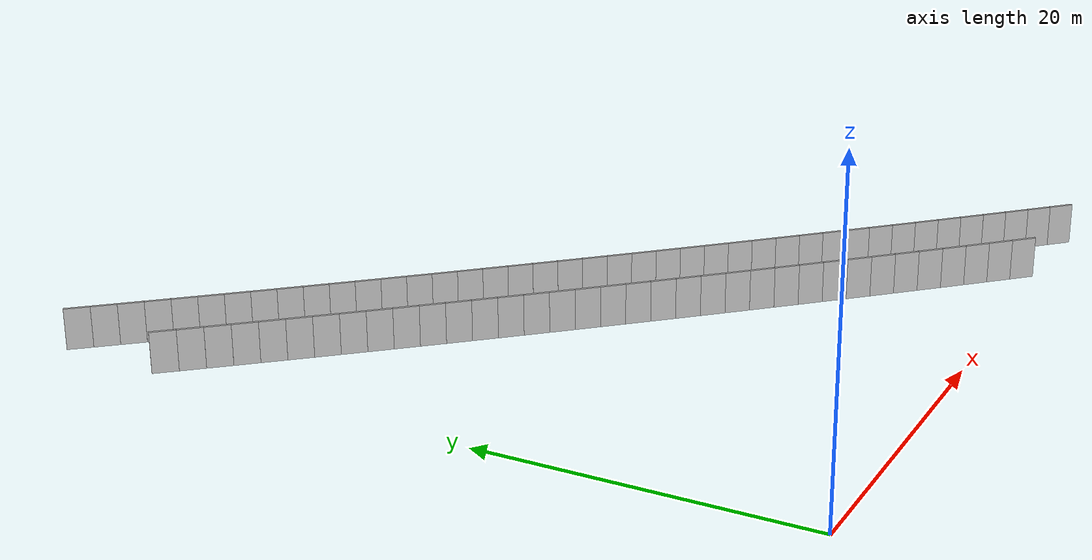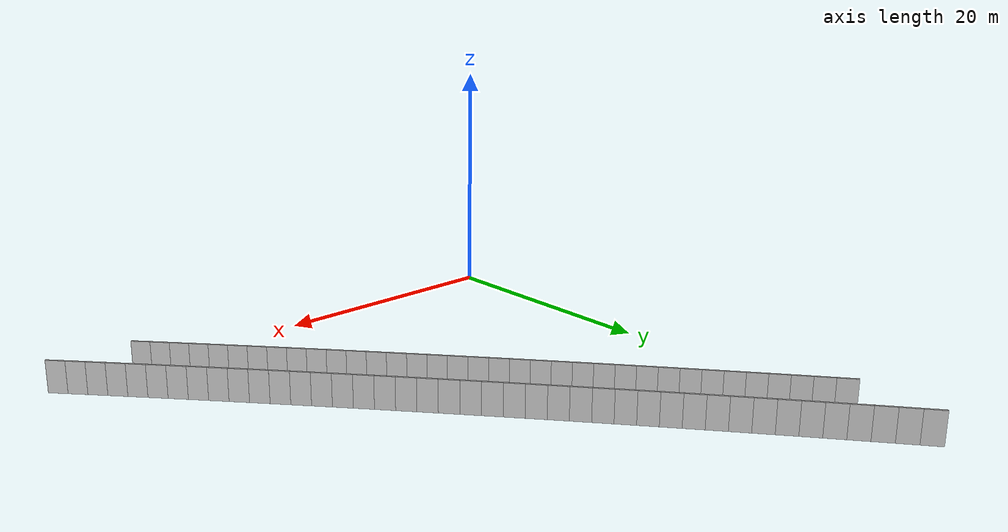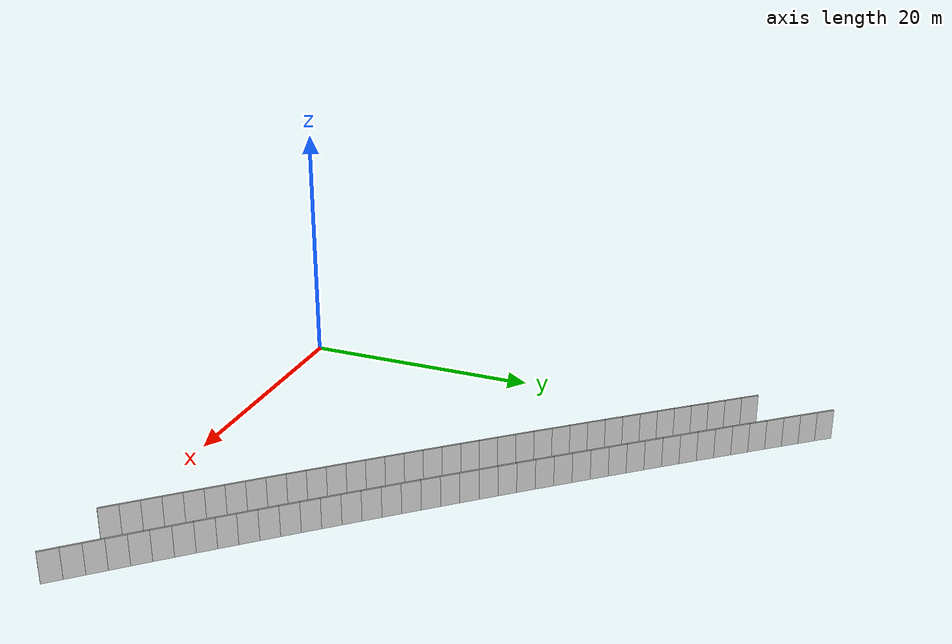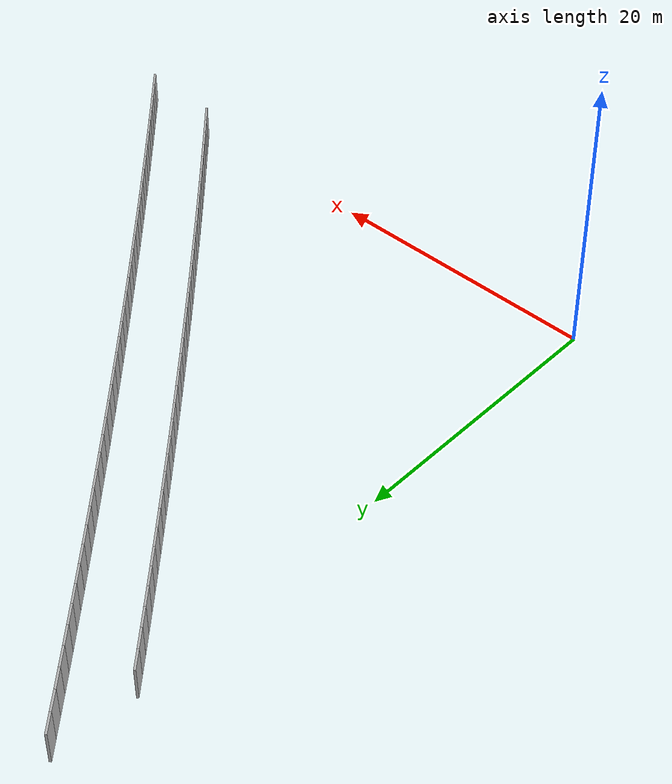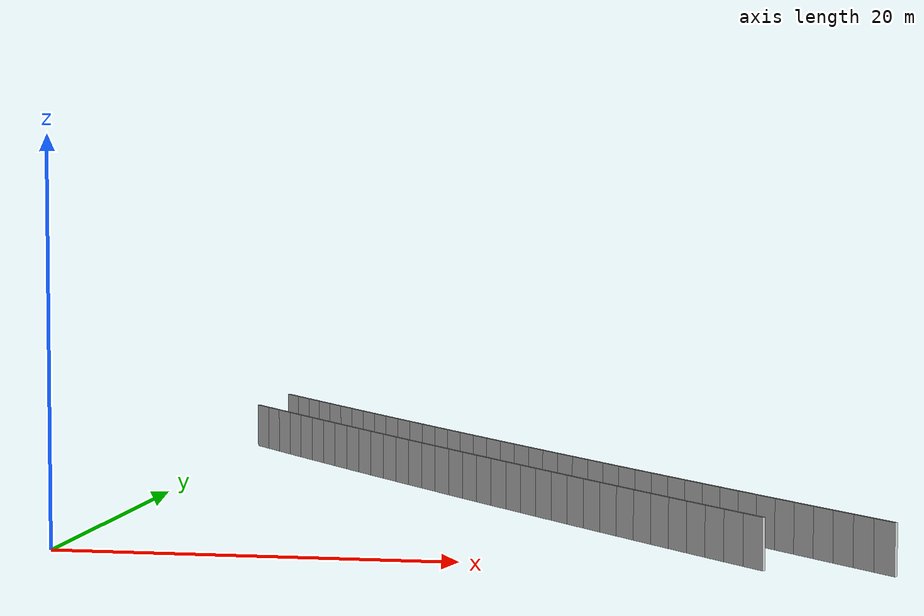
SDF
<?xml version="1.0" ?>
<sdf version="1.6">
  <model name="sps_0810">
    <pose frame="">0 0 0 0 -0 0</pose>
    <static>1</static>
    <self_collide>0</self_collide>
    <allow_auto_disable>0</allow_auto_disable>
    <link name="Wall8451">
      <kinematic>0</kinematic>
      <gravity>1</gravity>
      <self_collide>0</self_collide>
      <collision name="collision">
        <geometry>
          <box>
            <size>1.49902 0.15 2.5</size>
          </box>
        </geometry>
        <pose frame="">0 0 0 0 -0 0</pose>
      </collision>
      <visual name="visual">
        <geometry>
          <box>
            <size>1.49902 0.15 2.5</size>
          </box>
        </geometry>
        <pose frame="">0 0 0 0 -0 0</pose>
        <cast_shadows>1</cast_shadows>
        <transparency>0.0</transparency>
      </visual>
      <pose frame="">0.347434 39.3795 1.25 0 0 -0.882345</pose>
    </link>
    <link name="Wall8452">
      <kinematic>0</kinematic>
      <gravity>1</gravity>
      <self_collide>0</self_collide>
      <collision name="collision">
        <geometry>
          <box>
            <size>1.49896 0.15 2.5</size>
          </box>
        </geometry>
        <pose frame="">0 0 0 0 -0 0</pose>
      </collision>
      <visual name="visual">
        <geometry>
          <box>
            <size>1.49896 0.15 2.5</size>
          </box>
        </geometry>
        <pose frame="">0 0 0 0 -0 0</pose>
        <cast_shadows>1</cast_shadows>
        <transparency>0.0</transparency>
      </visual>
      <pose frame="">1.30074 38.2227 1.25 0 0 -0.880729</pose>
    </link>
    <link name="Wall8453">
      <kinematic>0</kinematic>
      <gravity>1</gravity>
      <self_collide>0</self_collide>
      <collision name="collision">
        <geometry>
          <box>
            <size>1.49882 0.15 2.5</size>
          </box>
        </geometry>
        <pose frame="">0 0 0 0 -0 0</pose>
      </collision>
      <visual name="visual">
        <geometry>
          <box>
            <size>1.49882 0.15 2.5</size>
          </box>
        </geometry>
        <pose frame="">0 0 0 0 -0 0</pose>
        <cast_shadows>1</cast_shadows>
        <transparency>0.0</transparency>
      </visual>
      <pose frame="">2.25585 37.0675 1.25 0 0 -0.879119</pose>
    </link>
    <link name="Wall8454">
      <kinematic>0</kinematic>
      <gravity>1</gravity>
      <self_collide>0</self_collide>
      <collision name="collision">
        <geometry>
          <box>
            <size>1.49896 0.15 2.5</size>
          </box>
        </geometry>
        <pose frame="">0 0 0 0 -0 0</pose>
      </collision>
      <visual name="visual">
        <geometry>
          <box>
            <size>1.49896 0.15 2.5</size>
          </box>
        </geometry>
        <pose frame="">0 0 0 0 -0 0</pose>
        <cast_shadows>1</cast_shadows>
        <transparency>0.0</transparency>
      </visual>
      <pose frame="">3.21276 35.9138 1.25 0 0 -0.877606</pose>
    </link>
    <link name="Wall8455">
      <kinematic>0</kinematic>
      <gravity>1</gravity>
      <self_collide>0</self_collide>
      <collision name="collision">
        <geometry>
          <box>
            <size>1.49887 0.15 2.5</size>
          </box>
        </geometry>
        <pose frame="">0 0 0 0 -0 0</pose>
      </collision>
      <visual name="visual">
        <geometry>
          <box>
            <size>1.49887 0.15 2.5</size>
          </box>
        </geometry>
        <pose frame="">0 0 0 0 -0 0</pose>
        <cast_shadows>1</cast_shadows>
        <transparency>0.0</transparency>
      </visual>
      <pose frame="">4.17147 34.7616 1.25 0 0 -0.876022</pose>
    </link>
    <link name="Wall8456">
      <kinematic>0</kinematic>
      <gravity>1</gravity>
      <self_collide>0</self_collide>
      <collision name="collision">
        <geometry>
          <box>
            <size>1.49888 0.15 2.5</size>
          </box>
        </geometry>
        <pose frame="">0 0 0 0 -0 0</pose>
      </collision>
      <visual name="visual">
        <geometry>
          <box>
            <size>1.49888 0.15 2.5</size>
          </box>
        </geometry>
        <pose frame="">0 0 0 0 -0 0</pose>
        <cast_shadows>1</cast_shadows>
        <transparency>0.0</transparency>
      </visual>
      <pose frame="">5.13195 33.6109 1.25 0 0 -0.874489</pose>
    </link>
    <link name="Wall8457">
      <kinematic>0</kinematic>
      <gravity>1</gravity>
      <self_collide>0</self_collide>
      <collision name="collision">
        <geometry>
          <box>
            <size>1.49904 0.15 2.5</size>
          </box>
        </geometry>
        <pose frame="">0 0 0 0 -0 0</pose>
      </collision>
      <visual name="visual">
        <geometry>
          <box>
            <size>1.49904 0.15 2.5</size>
          </box>
        </geometry>
        <pose frame="">0 0 0 0 -0 0</pose>
        <cast_shadows>1</cast_shadows>
        <transparency>0.0</transparency>
      </visual>
      <pose frame="">6.09435 32.4617 1.25 0 0 -0.872774</pose>
    </link>
    <link name="Wall8458">
      <kinematic>0</kinematic>
      <gravity>1</gravity>
      <self_collide>0</self_collide>
      <collision name="collision">
        <geometry>
          <box>
            <size>1.4989 0.15 2.5</size>
          </box>
        </geometry>
        <pose frame="">0 0 0 0 -0 0</pose>
      </collision>
      <visual name="visual">
        <geometry>
          <box>
            <size>1.4989 0.15 2.5</size>
          </box>
        </geometry>
        <pose frame="">0 0 0 0 -0 0</pose>
        <cast_shadows>1</cast_shadows>
        <transparency>0.0</transparency>
      </visual>
      <pose frame="">7.05855 31.314 1.25 0 0 -0.871366</pose>
    </link>
    <link name="Wall8459">
      <kinematic>0</kinematic>
      <gravity>1</gravity>
      <self_collide>0</self_collide>
      <collision name="collision">
        <geometry>
          <box>
            <size>1.49903 0.15 2.5</size>
          </box>
        </geometry>
        <pose frame="">0 0 0 0 -0 0</pose>
      </collision>
      <visual name="visual">
        <geometry>
          <box>
            <size>1.49903 0.15 2.5</size>
          </box>
        </geometry>
        <pose frame="">0 0 0 0 -0 0</pose>
        <cast_shadows>1</cast_shadows>
        <transparency>0.0</transparency>
      </visual>
      <pose frame="">8.02456 30.1678 1.25 0 0 -0.869625</pose>
    </link>
    <link name="Wall8460">
      <kinematic>0</kinematic>
      <gravity>1</gravity>
      <self_collide>0</self_collide>
      <collision name="collision">
        <geometry>
          <box>
            <size>1.49892 0.15 2.5</size>
          </box>
        </geometry>
        <pose frame="">0 0 0 0 -0 0</pose>
      </collision>
      <visual name="visual">
        <geometry>
          <box>
            <size>1.49892 0.15 2.5</size>
          </box>
        </geometry>
        <pose frame="">0 0 0 0 -0 0</pose>
        <cast_shadows>1</cast_shadows>
        <transparency>0.0</transparency>
      </visual>
      <pose frame="">8.99245 29.0232 1.25 0 0 -0.868071</pose>
    </link>
    <link name="Wall8461">
      <kinematic>0</kinematic>
      <gravity>1</gravity>
      <self_collide>0</self_collide>
      <collision name="collision">
        <geometry>
          <box>
            <size>1.49907 0.15 2.5</size>
          </box>
        </geometry>
        <pose frame="">0 0 0 0 -0 0</pose>
      </collision>
      <visual name="visual">
        <geometry>
          <box>
            <size>1.49907 0.15 2.5</size>
          </box>
        </geometry>
        <pose frame="">0 0 0 0 -0 0</pose>
        <cast_shadows>1</cast_shadows>
        <transparency>0.0</transparency>
      </visual>
      <pose frame="">9.96215 27.8801 1.25 0 0 -0.866502</pose>
    </link>
    <link name="Wall8462">
      <kinematic>0</kinematic>
      <gravity>1</gravity>
      <self_collide>0</self_collide>
      <collision name="collision">
        <geometry>
          <box>
            <size>1.49871 0.15 2.5</size>
          </box>
        </geometry>
        <pose frame="">0 0 0 0 -0 0</pose>
      </collision>
      <visual name="visual">
        <geometry>
          <box>
            <size>1.49871 0.15 2.5</size>
          </box>
        </geometry>
        <pose frame="">0 0 0 0 -0 0</pose>
        <cast_shadows>1</cast_shadows>
        <transparency>0.0</transparency>
      </visual>
      <pose frame="">10.9336 26.7386 1.25 0 0 -0.864962</pose>
    </link>
    <link name="Wall8463">
      <kinematic>0</kinematic>
      <gravity>1</gravity>
      <self_collide>0</self_collide>
      <collision name="collision">
        <geometry>
          <box>
            <size>1.49899 0.15 2.5</size>
          </box>
        </geometry>
        <pose frame="">0 0 0 0 -0 0</pose>
      </collision>
      <visual name="visual">
        <geometry>
          <box>
            <size>1.49899 0.15 2.5</size>
          </box>
        </geometry>
        <pose frame="">0 0 0 0 -0 0</pose>
        <cast_shadows>1</cast_shadows>
        <transparency>0.0</transparency>
      </visual>
      <pose frame="">11.9068 25.5987 1.25 0 0 -0.863301</pose>
    </link>
    <link name="Wall8464">
      <kinematic>0</kinematic>
      <gravity>1</gravity>
      <self_collide>0</self_collide>
      <collision name="collision">
        <geometry>
          <box>
            <size>1.49873 0.15 2.5</size>
          </box>
        </geometry>
        <pose frame="">0 0 0 0 -0 0</pose>
      </collision>
      <visual name="visual">
        <geometry>
          <box>
            <size>1.49873 0.15 2.5</size>
          </box>
        </geometry>
        <pose frame="">0 0 0 0 -0 0</pose>
        <cast_shadows>1</cast_shadows>
        <transparency>0.0</transparency>
      </visual>
      <pose frame="">12.8818 24.4603 1.25 0 0 -0.861812</pose>
    </link>
    <link name="Wall8465">
      <kinematic>0</kinematic>
      <gravity>1</gravity>
      <self_collide>0</self_collide>
      <collision name="collision">
        <geometry>
          <box>
            <size>1.49903 0.15 2.5</size>
          </box>
        </geometry>
        <pose frame="">0 0 0 0 -0 0</pose>
      </collision>
      <visual name="visual">
        <geometry>
          <box>
            <size>1.49903 0.15 2.5</size>
          </box>
        </geometry>
        <pose frame="">0 0 0 0 -0 0</pose>
        <cast_shadows>1</cast_shadows>
        <transparency>0.0</transparency>
      </visual>
      <pose frame="">13.8585 23.3234 1.25 0 0 -0.860209</pose>
    </link>
    <link name="Wall8466">
      <kinematic>0</kinematic>
      <gravity>1</gravity>
      <self_collide>0</self_collide>
      <collision name="collision">
        <geometry>
          <box>
            <size>1.49911 0.15 2.5</size>
          </box>
        </geometry>
        <pose frame="">0 0 0 0 -0 0</pose>
      </collision>
      <visual name="visual">
        <geometry>
          <box>
            <size>1.49911 0.15 2.5</size>
          </box>
        </geometry>
        <pose frame="">0 0 0 0 -0 0</pose>
        <cast_shadows>1</cast_shadows>
        <transparency>0.0</transparency>
      </visual>
      <pose frame="">14.8372 22.1879 1.25 0 0 -0.858646</pose>
    </link>
    <link name="Wall8467">
      <kinematic>0</kinematic>
      <gravity>1</gravity>
      <self_collide>0</self_collide>
      <collision name="collision">
        <geometry>
          <box>
            <size>1.49893 0.15 2.5</size>
          </box>
        </geometry>
        <pose frame="">0 0 0 0 -0 0</pose>
      </collision>
      <visual name="visual">
        <geometry>
          <box>
            <size>1.49893 0.15 2.5</size>
          </box>
        </geometry>
        <pose frame="">0 0 0 0 -0 0</pose>
        <cast_shadows>1</cast_shadows>
        <transparency>0.0</transparency>
      </visual>
      <pose frame="">15.8177 21.054 1.25 0 0 -0.856981</pose>
    </link>
    <link name="Wall8468">
      <kinematic>0</kinematic>
      <gravity>1</gravity>
      <self_collide>0</self_collide>
      <collision name="collision">
        <geometry>
          <box>
            <size>1.49907 0.15 2.5</size>
          </box>
        </geometry>
        <pose frame="">0 0 0 0 -0 0</pose>
      </collision>
      <visual name="visual">
        <geometry>
          <box>
            <size>1.49907 0.15 2.5</size>
          </box>
        </geometry>
        <pose frame="">0 0 0 0 -0 0</pose>
        <cast_shadows>1</cast_shadows>
        <transparency>0.0</transparency>
      </visual>
      <pose frame="">16.8 19.9217 1.25 0 0 -0.855444</pose>
    </link>
    <link name="Wall8469">
      <kinematic>0</kinematic>
      <gravity>1</gravity>
      <self_collide>0</self_collide>
      <collision name="collision">
        <geometry>
          <box>
            <size>1.4989 0.15 2.5</size>
          </box>
        </geometry>
        <pose frame="">0 0 0 0 -0 0</pose>
      </collision>
      <visual name="visual">
        <geometry>
          <box>
            <size>1.4989 0.15 2.5</size>
          </box>
        </geometry>
        <pose frame="">0 0 0 0 -0 0</pose>
        <cast_shadows>1</cast_shadows>
        <transparency>0.0</transparency>
      </visual>
      <pose frame="">17.7841 18.791 1.25 0 0 -0.853778</pose>
    </link>
    <link name="Wall8470">
      <kinematic>0</kinematic>
      <gravity>1</gravity>
      <self_collide>0</self_collide>
      <collision name="collision">
        <geometry>
          <box>
            <size>1.49892 0.15 2.5</size>
          </box>
        </geometry>
        <pose frame="">0 0 0 0 -0 0</pose>
      </collision>
      <visual name="visual">
        <geometry>
          <box>
            <size>1.49892 0.15 2.5</size>
          </box>
        </geometry>
        <pose frame="">0 0 0 0 -0 0</pose>
        <cast_shadows>1</cast_shadows>
        <transparency>0.0</transparency>
      </visual>
      <pose frame="">18.77 17.6619 1.25 0 0 -0.852334</pose>
    </link>
    <link name="Wall8471">
      <kinematic>0</kinematic>
      <gravity>1</gravity>
      <self_collide>0</self_collide>
      <collision name="collision">
        <geometry>
          <box>
            <size>1.49885 0.15 2.5</size>
          </box>
        </geometry>
        <pose frame="">0 0 0 0 -0 0</pose>
      </collision>
      <visual name="visual">
        <geometry>
          <box>
            <size>1.49885 0.15 2.5</size>
          </box>
        </geometry>
        <pose frame="">0 0 0 0 -0 0</pose>
        <cast_shadows>1</cast_shadows>
        <transparency>0.0</transparency>
      </visual>
      <pose frame="">19.7575 16.5343 1.25 0 0 -0.850721</pose>
    </link>
    <link name="Wall8472">
      <kinematic>0</kinematic>
      <gravity>1</gravity>
      <self_collide>0</self_collide>
      <collision name="collision">
        <geometry>
          <box>
            <size>1.49901 0.15 2.5</size>
          </box>
        </geometry>
        <pose frame="">0 0 0 0 -0 0</pose>
      </collision>
      <visual name="visual">
        <geometry>
          <box>
            <size>1.49901 0.15 2.5</size>
          </box>
        </geometry>
        <pose frame="">0 0 0 0 -0 0</pose>
        <cast_shadows>1</cast_shadows>
        <transparency>0.0</transparency>
      </visual>
      <pose frame="">20.7468 15.4082 1.25 0 0 -0.849243</pose>
    </link>
    <link name="Wall8473">
      <kinematic>0</kinematic>
      <gravity>1</gravity>
      <self_collide>0</self_collide>
      <collision name="collision">
        <geometry>
          <box>
            <size>1.49885 0.15 2.5</size>
          </box>
        </geometry>
        <pose frame="">0 0 0 0 -0 0</pose>
      </collision>
      <visual name="visual">
        <geometry>
          <box>
            <size>1.49885 0.15 2.5</size>
          </box>
        </geometry>
        <pose frame="">0 0 0 0 -0 0</pose>
        <cast_shadows>1</cast_shadows>
        <transparency>0.0</transparency>
      </visual>
      <pose frame="">21.7378 14.2837 1.25 0 0 -0.847519</pose>
    </link>
    <link name="Wall8474">
      <kinematic>0</kinematic>
      <gravity>1</gravity>
      <self_collide>0</self_collide>
      <collision name="collision">
        <geometry>
          <box>
            <size>1.49901 0.15 2.5</size>
          </box>
        </geometry>
        <pose frame="">0 0 0 0 -0 0</pose>
      </collision>
      <visual name="visual">
        <geometry>
          <box>
            <size>1.49901 0.15 2.5</size>
          </box>
        </geometry>
        <pose frame="">0 0 0 0 -0 0</pose>
        <cast_shadows>1</cast_shadows>
        <transparency>0.0</transparency>
      </visual>
      <pose frame="">22.7308 13.1608 1.25 0 0 -0.845983</pose>
    </link>
    <link name="Wall8475">
      <kinematic>0</kinematic>
      <gravity>1</gravity>
      <self_collide>0</self_collide>
      <collision name="collision">
        <geometry>
          <box>
            <size>1.49895 0.15 2.5</size>
          </box>
        </geometry>
        <pose frame="">0 0 0 0 -0 0</pose>
      </collision>
      <visual name="visual">
        <geometry>
          <box>
            <size>1.49895 0.15 2.5</size>
          </box>
        </geometry>
        <pose frame="">0 0 0 0 -0 0</pose>
        <cast_shadows>1</cast_shadows>
        <transparency>0.0</transparency>
      </visual>
      <pose frame="">23.7255 12.0394 1.25 0 0 -0.844428</pose>
    </link>
    <link name="Wall8476">
      <kinematic>0</kinematic>
      <gravity>1</gravity>
      <self_collide>0</self_collide>
      <collision name="collision">
        <geometry>
          <box>
            <size>1.49898 0.15 2.5</size>
          </box>
        </geometry>
        <pose frame="">0 0 0 0 -0 0</pose>
      </collision>
      <visual name="visual">
        <geometry>
          <box>
            <size>1.49898 0.15 2.5</size>
          </box>
        </geometry>
        <pose frame="">0 0 0 0 -0 0</pose>
        <cast_shadows>1</cast_shadows>
        <transparency>0.0</transparency>
      </visual>
      <pose frame="">24.7219 10.9196 1.25 0 0 -0.842754</pose>
    </link>
    <link name="Wall8477">
      <kinematic>0</kinematic>
      <gravity>1</gravity>
      <self_collide>0</self_collide>
      <collision name="collision">
        <geometry>
          <box>
            <size>1.49886 0.15 2.5</size>
          </box>
        </geometry>
        <pose frame="">0 0 0 0 -0 0</pose>
      </collision>
      <visual name="visual">
        <geometry>
          <box>
            <size>1.49886 0.15 2.5</size>
          </box>
        </geometry>
        <pose frame="">0 0 0 0 -0 0</pose>
        <cast_shadows>1</cast_shadows>
        <transparency>0.0</transparency>
      </visual>
      <pose frame="">25.7201 9.80141 1.25 0 0 -0.841317</pose>
    </link>
    <link name="Wall8478">
      <kinematic>0</kinematic>
      <gravity>1</gravity>
      <self_collide>0</self_collide>
      <collision name="collision">
        <geometry>
          <box>
            <size>1.49902 0.15 2.5</size>
          </box>
        </geometry>
        <pose frame="">0 0 0 0 -0 0</pose>
      </collision>
      <visual name="visual">
        <geometry>
          <box>
            <size>1.49902 0.15 2.5</size>
          </box>
        </geometry>
        <pose frame="">0 0 0 0 -0 0</pose>
        <cast_shadows>1</cast_shadows>
        <transparency>0.0</transparency>
      </visual>
      <pose frame="">26.7201 8.6848 1.25 0 0 -0.839552</pose>
    </link>
    <link name="Wall8479">
      <kinematic>0</kinematic>
      <gravity>1</gravity>
      <self_collide>0</self_collide>
      <collision name="collision">
        <geometry>
          <box>
            <size>1.49886 0.15 2.5</size>
          </box>
        </geometry>
        <pose frame="">0 0 0 0 -0 0</pose>
      </collision>
      <visual name="visual">
        <geometry>
          <box>
            <size>1.49886 0.15 2.5</size>
          </box>
        </geometry>
        <pose frame="">0 0 0 0 -0 0</pose>
        <cast_shadows>1</cast_shadows>
        <transparency>0.0</transparency>
      </visual>
      <pose frame="">27.7219 7.56981 1.25 0 0 -0.838087</pose>
    </link>
    <link name="Wall8480">
      <kinematic>0</kinematic>
      <gravity>1</gravity>
      <self_collide>0</self_collide>
      <collision name="collision">
        <geometry>
          <box>
            <size>1.49908 0.15 2.5</size>
          </box>
        </geometry>
        <pose frame="">0 0 0 0 -0 0</pose>
      </collision>
      <visual name="visual">
        <geometry>
          <box>
            <size>1.49908 0.15 2.5</size>
          </box>
        </geometry>
        <pose frame="">0 0 0 0 -0 0</pose>
        <cast_shadows>1</cast_shadows>
        <transparency>0.0</transparency>
      </visual>
      <pose frame="">28.7255 6.45631 1.25 0 0 -0.836523</pose>
    </link>
    <link name="Wall8481">
      <kinematic>0</kinematic>
      <gravity>1</gravity>
      <self_collide>0</self_collide>
      <collision name="collision">
        <geometry>
          <box>
            <size>1.49891 0.15 2.5</size>
          </box>
        </geometry>
        <pose frame="">0 0 0 0 -0 0</pose>
      </collision>
      <visual name="visual">
        <geometry>
          <box>
            <size>1.49891 0.15 2.5</size>
          </box>
        </geometry>
        <pose frame="">0 0 0 0 -0 0</pose>
        <cast_shadows>1</cast_shadows>
        <transparency>0.0</transparency>
      </visual>
      <pose frame="">29.7308 5.34441 1.25 0 0 -0.834885</pose>
    </link>
    <link name="Wall8482">
      <kinematic>0</kinematic>
      <gravity>1</gravity>
      <self_collide>0</self_collide>
      <collision name="collision">
        <geometry>
          <box>
            <size>1.4988 0.15 2.5</size>
          </box>
        </geometry>
        <pose frame="">0 0 0 0 -0 0</pose>
      </collision>
      <visual name="visual">
        <geometry>
          <box>
            <size>1.4988 0.15 2.5</size>
          </box>
        </geometry>
        <pose frame="">0 0 0 0 -0 0</pose>
        <cast_shadows>1</cast_shadows>
        <transparency>0.0</transparency>
      </visual>
      <pose frame="">30.7378 4.23421 1.25 0 0 -0.833332</pose>
    </link>
    <link name="Wall8483">
      <kinematic>0</kinematic>
      <gravity>1</gravity>
      <self_collide>0</self_collide>
      <collision name="collision">
        <geometry>
          <box>
            <size>1.49886 0.15 2.5</size>
          </box>
        </geometry>
        <pose frame="">0 0 0 0 -0 0</pose>
      </collision>
      <visual name="visual">
        <geometry>
          <box>
            <size>1.49886 0.15 2.5</size>
          </box>
        </geometry>
        <pose frame="">0 0 0 0 -0 0</pose>
        <cast_shadows>1</cast_shadows>
        <transparency>0.0</transparency>
      </visual>
      <pose frame="">31.7465 3.12559 1.25 0 0 -0.831773</pose>
    </link>
    <link name="Wall8484">
      <kinematic>0</kinematic>
      <gravity>1</gravity>
      <self_collide>0</self_collide>
      <collision name="collision">
        <geometry>
          <box>
            <size>1.49914 0.15 2.5</size>
          </box>
        </geometry>
        <pose frame="">0 0 0 0 -0 0</pose>
      </collision>
      <visual name="visual">
        <geometry>
          <box>
            <size>1.49914 0.15 2.5</size>
          </box>
        </geometry>
        <pose frame="">0 0 0 0 -0 0</pose>
        <cast_shadows>1</cast_shadows>
        <transparency>0.0</transparency>
      </visual>
      <pose frame="">32.757 2.01848 1.25 0 0 -0.830122</pose>
    </link>
    <link name="Wall8485">
      <kinematic>0</kinematic>
      <gravity>1</gravity>
      <self_collide>0</self_collide>
      <collision name="collision">
        <geometry>
          <box>
            <size>1.49878 0.15 2.5</size>
          </box>
        </geometry>
        <pose frame="">0 0 0 0 -0 0</pose>
      </collision>
      <visual name="visual">
        <geometry>
          <box>
            <size>1.49878 0.15 2.5</size>
          </box>
        </geometry>
        <pose frame="">0 0 0 0 -0 0</pose>
        <cast_shadows>1</cast_shadows>
        <transparency>0.0</transparency>
      </visual>
      <pose frame="">33.7693 0.912978 1.25 0 0 -0.828634</pose>
    </link>
    <link name="Wall9529">
      <kinematic>0</kinematic>
      <gravity>1</gravity>
      <self_collide>0</self_collide>
      <collision name="collision">
        <geometry>
          <box>
            <size>1.49248 0.15 2.5</size>
          </box>
        </geometry>
        <pose frame="">0 0 0 0 -0 0</pose>
      </collision>
      <visual name="visual">
        <geometry>
          <box>
            <size>1.49248 0.15 2.5</size>
          </box>
        </geometry>
        <pose frame="">0 0 0 0 -0 0</pose>
        <cast_shadows>1</cast_shadows>
        <transparency>0.0</transparency>
      </visual>
      <pose frame="">0.707633 45.4744 1.25 0 0 -0.887044</pose>
    </link>
    <link name="Wall9530">
      <kinematic>0</kinematic>
      <gravity>1</gravity>
      <self_collide>0</self_collide>
      <collision name="collision">
        <geometry>
          <box>
            <size>1.49255 0.15 2.5</size>
          </box>
        </geometry>
        <pose frame="">0 0 0 0 -0 0</pose>
      </collision>
      <visual name="visual">
        <geometry>
          <box>
            <size>1.49255 0.15 2.5</size>
          </box>
        </geometry>
        <pose frame="">0 0 0 0 -0 0</pose>
        <cast_shadows>1</cast_shadows>
        <transparency>0.0</transparency>
      </visual>
      <pose frame="">1.65136 44.3181 1.25 0 0 -0.885498</pose>
    </link>
    <link name="Wall9531">
      <kinematic>0</kinematic>
      <gravity>1</gravity>
      <self_collide>0</self_collide>
      <collision name="collision">
        <geometry>
          <box>
            <size>1.49241 0.15 2.5</size>
          </box>
        </geometry>
        <pose frame="">0 0 0 0 -0 0</pose>
      </collision>
      <visual name="visual">
        <geometry>
          <box>
            <size>1.49241 0.15 2.5</size>
          </box>
        </geometry>
        <pose frame="">0 0 0 0 -0 0</pose>
        <cast_shadows>1</cast_shadows>
        <transparency>0.0</transparency>
      </visual>
      <pose frame="">2.59685 43.1633 1.25 0 0 -0.883939</pose>
    </link>
    <link name="Wall9532">
      <kinematic>0</kinematic>
      <gravity>1</gravity>
      <self_collide>0</self_collide>
      <collision name="collision">
        <geometry>
          <box>
            <size>1.49238 0.15 2.5</size>
          </box>
        </geometry>
        <pose frame="">0 0 0 0 -0 0</pose>
      </collision>
      <visual name="visual">
        <geometry>
          <box>
            <size>1.49238 0.15 2.5</size>
          </box>
        </geometry>
        <pose frame="">0 0 0 0 -0 0</pose>
        <cast_shadows>1</cast_shadows>
        <transparency>0.0</transparency>
      </visual>
      <pose frame="">3.54415 42.0101 1.25 0 0 -0.882284</pose>
    </link>
    <link name="Wall9533">
      <kinematic>0</kinematic>
      <gravity>1</gravity>
      <self_collide>0</self_collide>
      <collision name="collision">
        <geometry>
          <box>
            <size>1.49254 0.15 2.5</size>
          </box>
        </geometry>
        <pose frame="">0 0 0 0 -0 0</pose>
      </collision>
      <visual name="visual">
        <geometry>
          <box>
            <size>1.49254 0.15 2.5</size>
          </box>
        </geometry>
        <pose frame="">0 0 0 0 -0 0</pose>
        <cast_shadows>1</cast_shadows>
        <transparency>0.0</transparency>
      </visual>
      <pose frame="">4.49337 40.8584 1.25 0 0 -0.880676</pose>
    </link>
    <link name="Wall9534">
      <kinematic>0</kinematic>
      <gravity>1</gravity>
      <self_collide>0</self_collide>
      <collision name="collision">
        <geometry>
          <box>
            <size>1.49233 0.15 2.5</size>
          </box>
        </geometry>
        <pose frame="">0 0 0 0 -0 0</pose>
      </collision>
      <visual name="visual">
        <geometry>
          <box>
            <size>1.49233 0.15 2.5</size>
          </box>
        </geometry>
        <pose frame="">0 0 0 0 -0 0</pose>
        <cast_shadows>1</cast_shadows>
        <transparency>0.0</transparency>
      </visual>
      <pose frame="">5.44436 39.7082 1.25 0 0 -0.879179</pose>
    </link>
    <link name="Wall9535">
      <kinematic>0</kinematic>
      <gravity>1</gravity>
      <self_collide>0</self_collide>
      <collision name="collision">
        <geometry>
          <box>
            <size>1.49242 0.15 2.5</size>
          </box>
        </geometry>
        <pose frame="">0 0 0 0 -0 0</pose>
      </collision>
      <visual name="visual">
        <geometry>
          <box>
            <size>1.49242 0.15 2.5</size>
          </box>
        </geometry>
        <pose frame="">0 0 0 0 -0 0</pose>
        <cast_shadows>1</cast_shadows>
        <transparency>0.0</transparency>
      </visual>
      <pose frame="">6.39706 38.5595 1.25 0 0 -0.877634</pose>
    </link>
    <link name="Wall9536">
      <kinematic>0</kinematic>
      <gravity>1</gravity>
      <self_collide>0</self_collide>
      <collision name="collision">
        <geometry>
          <box>
            <size>1.49245 0.15 2.5</size>
          </box>
        </geometry>
        <pose frame="">0 0 0 0 -0 0</pose>
      </collision>
      <visual name="visual">
        <geometry>
          <box>
            <size>1.49245 0.15 2.5</size>
          </box>
        </geometry>
        <pose frame="">0 0 0 0 -0 0</pose>
        <cast_shadows>1</cast_shadows>
        <transparency>0.0</transparency>
      </visual>
      <pose frame="">7.35165 37.4123 1.25 0 0 -0.875948</pose>
    </link>
    <link name="Wall9537">
      <kinematic>0</kinematic>
      <gravity>1</gravity>
      <self_collide>0</self_collide>
      <collision name="collision">
        <geometry>
          <box>
            <size>1.49224 0.15 2.5</size>
          </box>
        </geometry>
        <pose frame="">0 0 0 0 -0 0</pose>
      </collision>
      <visual name="visual">
        <geometry>
          <box>
            <size>1.49224 0.15 2.5</size>
          </box>
        </geometry>
        <pose frame="">0 0 0 0 -0 0</pose>
        <cast_shadows>1</cast_shadows>
        <transparency>0.0</transparency>
      </visual>
      <pose frame="">8.30804 36.2667 1.25 0 0 -0.874393</pose>
    </link>
    <link name="Wall9538">
      <kinematic>0</kinematic>
      <gravity>1</gravity>
      <self_collide>0</self_collide>
      <collision name="collision">
        <geometry>
          <box>
            <size>1.4923 0.15 2.5</size>
          </box>
        </geometry>
        <pose frame="">0 0 0 0 -0 0</pose>
      </collision>
      <visual name="visual">
        <geometry>
          <box>
            <size>1.4923 0.15 2.5</size>
          </box>
        </geometry>
        <pose frame="">0 0 0 0 -0 0</pose>
        <cast_shadows>1</cast_shadows>
        <transparency>0.0</transparency>
      </visual>
      <pose frame="">9.26614 35.1226 1.25 0 0 -0.872879</pose>
    </link>
    <link name="Wall9539">
      <kinematic>0</kinematic>
      <gravity>1</gravity>
      <self_collide>0</self_collide>
      <collision name="collision">
        <geometry>
          <box>
            <size>1.49231 0.15 2.5</size>
          </box>
        </geometry>
        <pose frame="">0 0 0 0 -0 0</pose>
      </collision>
      <visual name="visual">
        <geometry>
          <box>
            <size>1.49231 0.15 2.5</size>
          </box>
        </geometry>
        <pose frame="">0 0 0 0 -0 0</pose>
        <cast_shadows>1</cast_shadows>
        <transparency>0.0</transparency>
      </visual>
      <pose frame="">10.226 33.98 1.25 0 0 -0.871282</pose>
    </link>
    <link name="Wall9540">
      <kinematic>0</kinematic>
      <gravity>1</gravity>
      <self_collide>0</self_collide>
      <collision name="collision">
        <geometry>
          <box>
            <size>1.49248 0.15 2.5</size>
          </box>
        </geometry>
        <pose frame="">0 0 0 0 -0 0</pose>
      </collision>
      <visual name="visual">
        <geometry>
          <box>
            <size>1.49248 0.15 2.5</size>
          </box>
        </geometry>
        <pose frame="">0 0 0 0 -0 0</pose>
        <cast_shadows>1</cast_shadows>
        <transparency>0.0</transparency>
      </visual>
      <pose frame="">11.1879 32.8389 1.25 0 0 -0.869618</pose>
    </link>
    <link name="Wall9541">
      <kinematic>0</kinematic>
      <gravity>1</gravity>
      <self_collide>0</self_collide>
      <collision name="collision">
        <geometry>
          <box>
            <size>1.49242 0.15 2.5</size>
          </box>
        </geometry>
        <pose frame="">0 0 0 0 -0 0</pose>
      </collision>
      <visual name="visual">
        <geometry>
          <box>
            <size>1.49242 0.15 2.5</size>
          </box>
        </geometry>
        <pose frame="">0 0 0 0 -0 0</pose>
        <cast_shadows>1</cast_shadows>
        <transparency>0.0</transparency>
      </visual>
      <pose frame="">12.1516 31.6993 1.25 0 0 -0.868025</pose>
    </link>
    <link name="Wall9542">
      <kinematic>0</kinematic>
      <gravity>1</gravity>
      <self_collide>0</self_collide>
      <collision name="collision">
        <geometry>
          <box>
            <size>1.49237 0.15 2.5</size>
          </box>
        </geometry>
        <pose frame="">0 0 0 0 -0 0</pose>
      </collision>
      <visual name="visual">
        <geometry>
          <box>
            <size>1.49237 0.15 2.5</size>
          </box>
        </geometry>
        <pose frame="">0 0 0 0 -0 0</pose>
        <cast_shadows>1</cast_shadows>
        <transparency>0.0</transparency>
      </visual>
      <pose frame="">13.117 30.5612 1.25 0 0 -0.866606</pose>
    </link>
    <link name="Wall9543">
      <kinematic>0</kinematic>
      <gravity>1</gravity>
      <self_collide>0</self_collide>
      <collision name="collision">
        <geometry>
          <box>
            <size>1.49261 0.15 2.5</size>
          </box>
        </geometry>
        <pose frame="">0 0 0 0 -0 0</pose>
      </collision>
      <visual name="visual">
        <geometry>
          <box>
            <size>1.49261 0.15 2.5</size>
          </box>
        </geometry>
        <pose frame="">0 0 0 0 -0 0</pose>
        <cast_shadows>1</cast_shadows>
        <transparency>0.0</transparency>
      </visual>
      <pose frame="">14.0842 29.4245 1.25 0 0 -0.864969</pose>
    </link>
    <link name="Wall9544">
      <kinematic>0</kinematic>
      <gravity>1</gravity>
      <self_collide>0</self_collide>
      <collision name="collision">
        <geometry>
          <box>
            <size>1.49241 0.15 2.5</size>
          </box>
        </geometry>
        <pose frame="">0 0 0 0 -0 0</pose>
      </collision>
      <visual name="visual">
        <geometry>
          <box>
            <size>1.49241 0.15 2.5</size>
          </box>
        </geometry>
        <pose frame="">0 0 0 0 -0 0</pose>
        <cast_shadows>1</cast_shadows>
        <transparency>0.0</transparency>
      </visual>
      <pose frame="">15.0532 28.2894 1.25 0 0 -0.863297</pose>
    </link>
    <link name="Wall9545">
      <kinematic>0</kinematic>
      <gravity>1</gravity>
      <self_collide>0</self_collide>
      <collision name="collision">
        <geometry>
          <box>
            <size>1.49242 0.15 2.5</size>
          </box>
        </geometry>
        <pose frame="">0 0 0 0 -0 0</pose>
      </collision>
      <visual name="visual">
        <geometry>
          <box>
            <size>1.49242 0.15 2.5</size>
          </box>
        </geometry>
        <pose frame="">0 0 0 0 -0 0</pose>
        <cast_shadows>1</cast_shadows>
        <transparency>0.0</transparency>
      </visual>
      <pose frame="">16.024 27.1559 1.25 0 0 -0.861846</pose>
    </link>
    <link name="Wall9546">
      <kinematic>0</kinematic>
      <gravity>1</gravity>
      <self_collide>0</self_collide>
      <collision name="collision">
        <geometry>
          <box>
            <size>1.49237 0.15 2.5</size>
          </box>
        </geometry>
        <pose frame="">0 0 0 0 -0 0</pose>
      </collision>
      <visual name="visual">
        <geometry>
          <box>
            <size>1.49237 0.15 2.5</size>
          </box>
        </geometry>
        <pose frame="">0 0 0 0 -0 0</pose>
        <cast_shadows>1</cast_shadows>
        <transparency>0.0</transparency>
      </visual>
      <pose frame="">16.9965 26.0239 1.25 0 0 -0.860254</pose>
    </link>
    <link name="Wall9547">
      <kinematic>0</kinematic>
      <gravity>1</gravity>
      <self_collide>0</self_collide>
      <collision name="collision">
        <geometry>
          <box>
            <size>1.49243 0.15 2.5</size>
          </box>
        </geometry>
        <pose frame="">0 0 0 0 -0 0</pose>
      </collision>
      <visual name="visual">
        <geometry>
          <box>
            <size>1.49243 0.15 2.5</size>
          </box>
        </geometry>
        <pose frame="">0 0 0 0 -0 0</pose>
        <cast_shadows>1</cast_shadows>
        <transparency>0.0</transparency>
      </visual>
      <pose frame="">17.9709 24.8935 1.25 0 0 -0.85851</pose>
    </link>
    <link name="Wall9548">
      <kinematic>0</kinematic>
      <gravity>1</gravity>
      <self_collide>0</self_collide>
      <collision name="collision">
        <geometry>
          <box>
            <size>1.49227 0.15 2.5</size>
          </box>
        </geometry>
        <pose frame="">0 0 0 0 -0 0</pose>
      </collision>
      <visual name="visual">
        <geometry>
          <box>
            <size>1.49227 0.15 2.5</size>
          </box>
        </geometry>
        <pose frame="">0 0 0 0 -0 0</pose>
        <cast_shadows>1</cast_shadows>
        <transparency>0.0</transparency>
      </visual>
      <pose frame="">18.9471 23.7647 1.25 0 0 -0.857011</pose>
    </link>
    <link name="Wall9549">
      <kinematic>0</kinematic>
      <gravity>1</gravity>
      <self_collide>0</self_collide>
      <collision name="collision">
        <geometry>
          <box>
            <size>1.49227 0.15 2.5</size>
          </box>
        </geometry>
        <pose frame="">0 0 0 0 -0 0</pose>
      </collision>
      <visual name="visual">
        <geometry>
          <box>
            <size>1.49227 0.15 2.5</size>
          </box>
        </geometry>
        <pose frame="">0 0 0 0 -0 0</pose>
        <cast_shadows>1</cast_shadows>
        <transparency>0.0</transparency>
      </visual>
      <pose frame="">19.925 22.6375 1.25 0 0 -0.855387</pose>
    </link>
    <link name="Wall9550">
      <kinematic>0</kinematic>
      <gravity>1</gravity>
      <self_collide>0</self_collide>
      <collision name="collision">
        <geometry>
          <box>
            <size>1.49238 0.15 2.5</size>
          </box>
        </geometry>
        <pose frame="">0 0 0 0 -0 0</pose>
      </collision>
      <visual name="visual">
        <geometry>
          <box>
            <size>1.49238 0.15 2.5</size>
          </box>
        </geometry>
        <pose frame="">0 0 0 0 -0 0</pose>
        <cast_shadows>1</cast_shadows>
        <transparency>0.0</transparency>
      </visual>
      <pose frame="">20.9047 21.5118 1.25 0 0 -0.853875</pose>
    </link>
    <link name="Wall9551">
      <kinematic>0</kinematic>
      <gravity>1</gravity>
      <self_collide>0</self_collide>
      <collision name="collision">
        <geometry>
          <box>
            <size>1.49264 0.15 2.5</size>
          </box>
        </geometry>
        <pose frame="">0 0 0 0 -0 0</pose>
      </collision>
      <visual name="visual">
        <geometry>
          <box>
            <size>1.49264 0.15 2.5</size>
          </box>
        </geometry>
        <pose frame="">0 0 0 0 -0 0</pose>
        <cast_shadows>1</cast_shadows>
        <transparency>0.0</transparency>
      </visual>
      <pose frame="">21.8863 20.3875 1.25 0 0 -0.852239</pose>
    </link>
    <link name="Wall9552">
      <kinematic>0</kinematic>
      <gravity>1</gravity>
      <self_collide>0</self_collide>
      <collision name="collision">
        <geometry>
          <box>
            <size>1.49224 0.15 2.5</size>
          </box>
        </geometry>
        <pose frame="">0 0 0 0 -0 0</pose>
      </collision>
      <visual name="visual">
        <geometry>
          <box>
            <size>1.49224 0.15 2.5</size>
          </box>
        </geometry>
        <pose frame="">0 0 0 0 -0 0</pose>
        <cast_shadows>1</cast_shadows>
        <transparency>0.0</transparency>
      </visual>
      <pose frame="">22.8697 19.2648 1.25 0 0 -0.85075</pose>
    </link>
    <link name="Wall9553">
      <kinematic>0</kinematic>
      <gravity>1</gravity>
      <self_collide>0</self_collide>
      <collision name="collision">
        <geometry>
          <box>
            <size>1.49265 0.15 2.5</size>
          </box>
        </geometry>
        <pose frame="">0 0 0 0 -0 0</pose>
      </collision>
      <visual name="visual">
        <geometry>
          <box>
            <size>1.49265 0.15 2.5</size>
          </box>
        </geometry>
        <pose frame="">0 0 0 0 -0 0</pose>
        <cast_shadows>1</cast_shadows>
        <transparency>0.0</transparency>
      </visual>
      <pose frame="">23.8547 18.1436 1.25 0 0 -0.849197</pose>
    </link>
    <link name="Wall9554">
      <kinematic>0</kinematic>
      <gravity>1</gravity>
      <self_collide>0</self_collide>
      <collision name="collision">
        <geometry>
          <box>
            <size>1.49228 0.15 2.5</size>
          </box>
        </geometry>
        <pose frame="">0 0 0 0 -0 0</pose>
      </collision>
      <visual name="visual">
        <geometry>
          <box>
            <size>1.49228 0.15 2.5</size>
          </box>
        </geometry>
        <pose frame="">0 0 0 0 -0 0</pose>
        <cast_shadows>1</cast_shadows>
        <transparency>0.0</transparency>
      </visual>
      <pose frame="">24.8415 17.0239 1.25 0 0 -0.847619</pose>
    </link>
    <link name="Wall9555">
      <kinematic>0</kinematic>
      <gravity>1</gravity>
      <self_collide>0</self_collide>
      <collision name="collision">
        <geometry>
          <box>
            <size>1.49247 0.15 2.5</size>
          </box>
        </geometry>
        <pose frame="">0 0 0 0 -0 0</pose>
      </collision>
      <visual name="visual">
        <geometry>
          <box>
            <size>1.49247 0.15 2.5</size>
          </box>
        </geometry>
        <pose frame="">0 0 0 0 -0 0</pose>
        <cast_shadows>1</cast_shadows>
        <transparency>0.0</transparency>
      </visual>
      <pose frame="">25.83 15.9059 1.25 0 0 -0.845872</pose>
    </link>
    <link name="Wall9556">
      <kinematic>0</kinematic>
      <gravity>1</gravity>
      <self_collide>0</self_collide>
      <collision name="collision">
        <geometry>
          <box>
            <size>1.49234 0.15 2.5</size>
          </box>
        </geometry>
        <pose frame="">0 0 0 0 -0 0</pose>
      </collision>
      <visual name="visual">
        <geometry>
          <box>
            <size>1.49234 0.15 2.5</size>
          </box>
        </geometry>
        <pose frame="">0 0 0 0 -0 0</pose>
        <cast_shadows>1</cast_shadows>
        <transparency>0.0</transparency>
      </visual>
      <pose frame="">26.8205 14.7895 1.25 0 0 -0.844371</pose>
    </link>
    <link name="Wall9557">
      <kinematic>0</kinematic>
      <gravity>1</gravity>
      <self_collide>0</self_collide>
      <collision name="collision">
        <geometry>
          <box>
            <size>1.49246 0.15 2.5</size>
          </box>
        </geometry>
        <pose frame="">0 0 0 0 -0 0</pose>
      </collision>
      <visual name="visual">
        <geometry>
          <box>
            <size>1.49246 0.15 2.5</size>
          </box>
        </geometry>
        <pose frame="">0 0 0 0 -0 0</pose>
        <cast_shadows>1</cast_shadows>
        <transparency>0.0</transparency>
      </visual>
      <pose frame="">27.8126 13.6746 1.25 0 0 -0.84286</pose>
    </link>
    <link name="Wall9558">
      <kinematic>0</kinematic>
      <gravity>1</gravity>
      <self_collide>0</self_collide>
      <collision name="collision">
        <geometry>
          <box>
            <size>1.4925 0.15 2.5</size>
          </box>
        </geometry>
        <pose frame="">0 0 0 0 -0 0</pose>
      </collision>
      <visual name="visual">
        <geometry>
          <box>
            <size>1.4925 0.15 2.5</size>
          </box>
        </geometry>
        <pose frame="">0 0 0 0 -0 0</pose>
        <cast_shadows>1</cast_shadows>
        <transparency>0.0</transparency>
      </visual>
      <pose frame="">28.8064 12.5612 1.25 0 0 -0.841237</pose>
    </link>
    <link name="Wall9559">
      <kinematic>0</kinematic>
      <gravity>1</gravity>
      <self_collide>0</self_collide>
      <collision name="collision">
        <geometry>
          <box>
            <size>1.49237 0.15 2.5</size>
          </box>
        </geometry>
        <pose frame="">0 0 0 0 -0 0</pose>
      </collision>
      <visual name="visual">
        <geometry>
          <box>
            <size>1.49237 0.15 2.5</size>
          </box>
        </geometry>
        <pose frame="">0 0 0 0 -0 0</pose>
        <cast_shadows>1</cast_shadows>
        <transparency>0.0</transparency>
      </visual>
      <pose frame="">29.8021 11.4494 1.25 0 0 -0.839735</pose>
    </link>
    <link name="Wall9560">
      <kinematic>0</kinematic>
      <gravity>1</gravity>
      <self_collide>0</self_collide>
      <collision name="collision">
        <geometry>
          <box>
            <size>1.49237 0.15 2.5</size>
          </box>
        </geometry>
        <pose frame="">0 0 0 0 -0 0</pose>
      </collision>
      <visual name="visual">
        <geometry>
          <box>
            <size>1.49237 0.15 2.5</size>
          </box>
        </geometry>
        <pose frame="">0 0 0 0 -0 0</pose>
        <cast_shadows>1</cast_shadows>
        <transparency>0.0</transparency>
      </visual>
      <pose frame="">30.7994 10.3392 1.25 0 0 -0.838085</pose>
    </link>
    <link name="Wall9561">
      <kinematic>0</kinematic>
      <gravity>1</gravity>
      <self_collide>0</self_collide>
      <collision name="collision">
        <geometry>
          <box>
            <size>1.49224 0.15 2.5</size>
          </box>
        </geometry>
        <pose frame="">0 0 0 0 -0 0</pose>
      </collision>
      <visual name="visual">
        <geometry>
          <box>
            <size>1.49224 0.15 2.5</size>
          </box>
        </geometry>
        <pose frame="">0 0 0 0 -0 0</pose>
        <cast_shadows>1</cast_shadows>
        <transparency>0.0</transparency>
      </visual>
      <pose frame="">31.7985 9.2307 1.25 0 0 -0.836409</pose>
    </link>
    <link name="Wall9562">
      <kinematic>0</kinematic>
      <gravity>1</gravity>
      <self_collide>0</self_collide>
      <collision name="collision">
        <geometry>
          <box>
            <size>1.49239 0.15 2.5</size>
          </box>
        </geometry>
        <pose frame="">0 0 0 0 -0 0</pose>
      </collision>
      <visual name="visual">
        <geometry>
          <box>
            <size>1.49239 0.15 2.5</size>
          </box>
        </geometry>
        <pose frame="">0 0 0 0 -0 0</pose>
        <cast_shadows>1</cast_shadows>
        <transparency>0.0</transparency>
      </visual>
      <pose frame="">32.7994 8.12379 1.25 0 0 -0.834899</pose>
    </link>
    <link name="Wall9563">
      <kinematic>0</kinematic>
      <gravity>1</gravity>
      <self_collide>0</self_collide>
      <collision name="collision">
        <geometry>
          <box>
            <size>1.49232 0.15 2.5</size>
          </box>
        </geometry>
        <pose frame="">0 0 0 0 -0 0</pose>
      </collision>
      <visual name="visual">
        <geometry>
          <box>
            <size>1.49232 0.15 2.5</size>
          </box>
        </geometry>
        <pose frame="">0 0 0 0 -0 0</pose>
        <cast_shadows>1</cast_shadows>
        <transparency>0.0</transparency>
      </visual>
      <pose frame="">33.802 7.01839 1.25 0 0 -0.833366</pose>
    </link>
    <link name="Wall9564">
      <kinematic>0</kinematic>
      <gravity>1</gravity>
      <self_collide>0</self_collide>
      <collision name="collision">
        <geometry>
          <box>
            <size>1.4926 0.15 2.5</size>
          </box>
        </geometry>
        <pose frame="">0 0 0 0 -0 0</pose>
      </collision>
      <visual name="visual">
        <geometry>
          <box>
            <size>1.4926 0.15 2.5</size>
          </box>
        </geometry>
        <pose frame="">0 0 0 0 -0 0</pose>
        <cast_shadows>1</cast_shadows>
        <transparency>0.0</transparency>
      </visual>
      <pose frame="">34.8064 5.91447 1.25 0 0 -0.831765</pose>
    </link>
    <link name="Wall9565">
      <kinematic>0</kinematic>
      <gravity>1</gravity>
      <self_collide>0</self_collide>
      <collision name="collision">
        <geometry>
          <box>
            <size>1.49223 0.15 2.5</size>
          </box>
        </geometry>
        <pose frame="">0 0 0 0 -0 0</pose>
      </collision>
      <visual name="visual">
        <geometry>
          <box>
            <size>1.49223 0.15 2.5</size>
          </box>
        </geometry>
        <pose frame="">0 0 0 0 -0 0</pose>
        <cast_shadows>1</cast_shadows>
        <transparency>0.0</transparency>
      </visual>
      <pose frame="">35.8125 4.81218 1.25 0 0 -0.830213</pose>
    </link>
    <link name="Wall9566">
      <kinematic>0</kinematic>
      <gravity>1</gravity>
      <self_collide>0</self_collide>
      <collision name="collision">
        <geometry>
          <box>
            <size>1.49238 0.15 2.5</size>
          </box>
        </geometry>
        <pose frame="">0 0 0 0 -0 0</pose>
      </collision>
      <visual name="visual">
        <geometry>
          <box>
            <size>1.49238 0.15 2.5</size>
          </box>
        </geometry>
        <pose frame="">0 0 0 0 -0 0</pose>
        <cast_shadows>1</cast_shadows>
        <transparency>0.0</transparency>
      </visual>
      <pose frame="">36.8203 3.71159 1.25 0 0 -0.82853</pose>
    </link>
    <link name="Wall9567">
      <kinematic>0</kinematic>
      <gravity>1</gravity>
      <self_collide>0</self_collide>
      <collision name="collision">
        <geometry>
          <box>
            <size>1.49242 0.15 2.5</size>
          </box>
        </geometry>
        <pose frame="">0 0 0 0 -0 0</pose>
      </collision>
      <visual name="visual">
        <geometry>
          <box>
            <size>1.49242 0.15 2.5</size>
          </box>
        </geometry>
        <pose frame="">0 0 0 0 -0 0</pose>
        <cast_shadows>1</cast_shadows>
        <transparency>0.0</transparency>
      </visual>
      <pose frame="">37.8299 2.6125 1.25 0 0 -0.827111</pose>
    </link>
    <link name="Wall9568">
      <kinematic>0</kinematic>
      <gravity>1</gravity>
      <self_collide>0</self_collide>
      <collision name="collision">
        <geometry>
          <box>
            <size>1.49248 0.15 2.5</size>
          </box>
        </geometry>
        <pose frame="">0 0 0 0 -0 0</pose>
      </collision>
      <visual name="visual">
        <geometry>
          <box>
            <size>1.49248 0.15 2.5</size>
          </box>
        </geometry>
        <pose frame="">0 0 0 0 -0 0</pose>
        <cast_shadows>1</cast_shadows>
        <transparency>0.0</transparency>
      </visual>
      <pose frame="">38.8412 1.515 1.25 0 0 -0.825314</pose>
    </link>
    <link name="Wall9569">
      <kinematic>0</kinematic>
      <gravity>1</gravity>
      <self_collide>0</self_collide>
      <collision name="collision">
        <geometry>
          <box>
            <size>1.49241 0.15 2.5</size>
          </box>
        </geometry>
        <pose frame="">0 0 0 0 -0 0</pose>
      </collision>
      <visual name="visual">
        <geometry>
          <box>
            <size>1.49241 0.15 2.5</size>
          </box>
        </geometry>
        <pose frame="">0 0 0 0 -0 0</pose>
        <cast_shadows>1</cast_shadows>
        <transparency>0.0</transparency>
      </visual>
      <pose frame="">39.8543 0.419082 1.25 0 0 -0.823985</pose>
    </link>
  </model>
</sdf>
